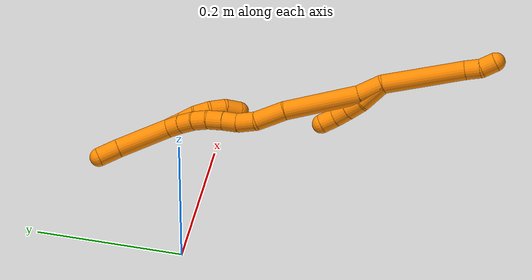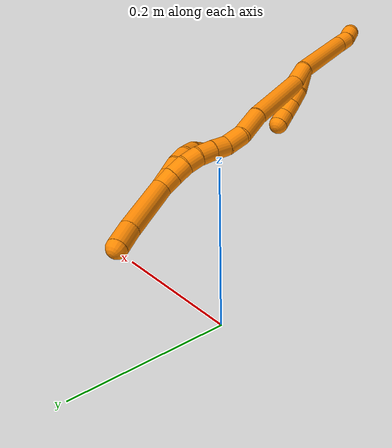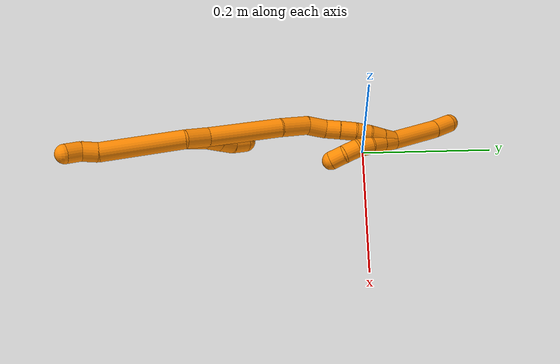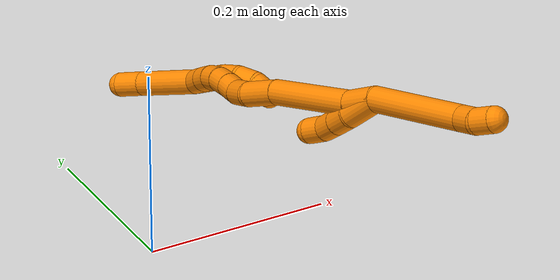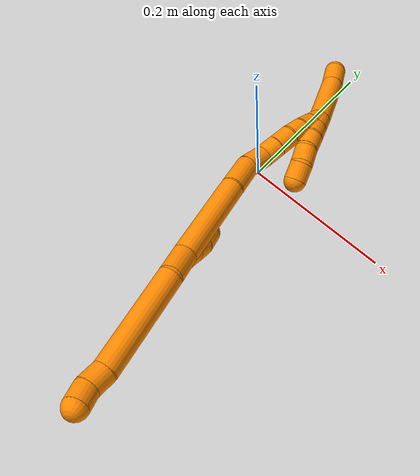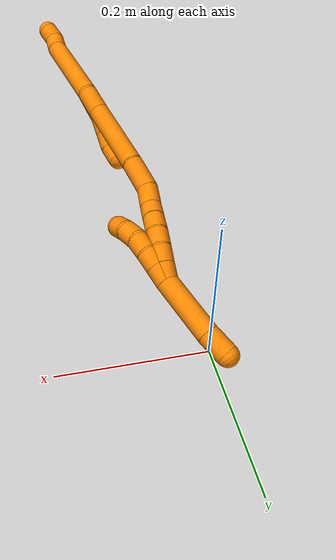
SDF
<sdf version="1.7">
 <world name="default">
  <model name="19">
   <static>0</static>
   <link name="19">
    <collision name="collision-cylinder-e_1_2_8">
     <pose>-0.006205 -0.013523 0.052353 0.252782 -0.114253 -0.014533</pose>
     <geometry><cylinder><radius>0.0125</radius><length>0.108852</length></cylinder></geometry>
     <surface>
      <friction><ode><mu>1.16</mu><mu2>1.16</mu2><slip1>0</slip1><slip2>0</slip2></ode></friction>
      <contact><ode><kp>1e+06</kp><kd>1</kd><max_vel>0</max_vel><min_depth>0.001</min_depth></ode></contact>
     </surface>
    </collision>
    <visual name="visual-cylinder-e_1_2_8">
     <pose>-0.006205 -0.013523 0.052353 0.252782 -0.114253 -0.014533</pose>
     <geometry><cylinder><radius>0.0125</radius><length>0.108852</length></cylinder></geometry>
     <material><ambient>0.996078 0.537255 0 1</ambient></material>
    </visual>
    <collision name="collision-cylinder-e_2_8_9">
     <pose>-0.015618 -0.028733 0.114504 0.170481 -0.312114 -0.026886</pose>
     <geometry><cylinder><radius>0.0125</radius><length>0.020895</length></cylinder></geometry>
     <surface>
      <friction><ode><mu>1.16</mu><mu2>1.16</mu2><slip1>0</slip1><slip2>0</slip2></ode></friction>
      <contact><ode><kp>1e+06</kp><kd>1</kd><max_vel>0</max_vel><min_depth>0.001</min_depth></ode></contact>
     </surface>
    </collision>
    <visual name="visual-cylinder-e_2_8_9">
     <pose>-0.015618 -0.028733 0.114504 0.170481 -0.312114 -0.026886</pose>
     <geometry><cylinder><radius>0.0125</radius><length>0.020895</length></cylinder></geometry>
     <material><ambient>0.996078 0.537255 0 1</ambient></material>
    </visual>
    <collision name="collision-cylinder-e_3_9_6">
     <pose>-0.018839 -0.030654 0.134427 0.023147 -0.001301 -1.5e-05</pose>
     <geometry><cylinder><radius>0.0125</radius><length>0.020253</length></cylinder></geometry>
     <surface>
      <friction><ode><mu>1.16</mu><mu2>1.16</mu2><slip1>0</slip1><slip2>0</slip2></ode></friction>
      <contact><ode><kp>1e+06</kp><kd>1</kd><max_vel>0</max_vel><min_depth>0.001</min_depth></ode></contact>
     </surface>
    </collision>
    <visual name="visual-cylinder-e_3_9_6">
     <pose>-0.018839 -0.030654 0.134427 0.023147 -0.001301 -1.5e-05</pose>
     <geometry><cylinder><radius>0.0125</radius><length>0.020253</length></cylinder></geometry>
     <material><ambient>0.996078 0.537255 0 1</ambient></material>
    </visual>
    <collision name="collision-cylinder-e_1_2_10">
     <pose>-0.000204 -0.00569 -0.017371 2.82507 -0.01117 -0.069963</pose>
     <geometry><cylinder><radius>0.0125</radius><length>0.036561</length></cylinder></geometry>
     <surface>
      <friction><ode><mu>1.16</mu><mu2>1.16</mu2><slip1>0</slip1><slip2>0</slip2></ode></friction>
      <contact><ode><kp>1e+06</kp><kd>1</kd><max_vel>0</max_vel><min_depth>0.001</min_depth></ode></contact>
     </surface>
    </collision>
    <visual name="visual-cylinder-e_1_2_10">
     <pose>-0.000204 -0.00569 -0.017371 2.82507 -0.01117 -0.069963</pose>
     <geometry><cylinder><radius>0.0125</radius><length>0.036561</length></cylinder></geometry>
     <material><ambient>0.996078 0.537255 0 1</ambient></material>
    </visual>
    <collision name="collision-cylinder-e_2_10_11">
     <pose>0.001639 -0.014098 -0.045318 2.89 0.185352 1.26756</pose>
     <geometry><cylinder><radius>0.0125</radius><length>0.022219</length></cylinder></geometry>
     <surface>
      <friction><ode><mu>1.16</mu><mu2>1.16</mu2><slip1>0</slip1><slip2>0</slip2></ode></friction>
      <contact><ode><kp>1e+06</kp><kd>1</kd><max_vel>0</max_vel><min_depth>0.001</min_depth></ode></contact>
     </surface>
    </collision>
    <visual name="visual-cylinder-e_2_10_11">
     <pose>0.001639 -0.014098 -0.045318 2.89 0.185352 1.26756</pose>
     <geometry><cylinder><radius>0.0125</radius><length>0.022219</length></cylinder></geometry>
     <material><ambient>0.996078 0.537255 0 1</ambient></material>
    </visual>
    <collision name="collision-cylinder-e_3_11_12">
     <pose>0.005754 -0.019059 -0.065783 2.91858 0.201134 1.46695</pose>
     <geometry><cylinder><radius>0.0125</radius><length>0.020699</length></cylinder></geometry>
     <surface>
      <friction><ode><mu>1.16</mu><mu2>1.16</mu2><slip1>0</slip1><slip2>0</slip2></ode></friction>
      <contact><ode><kp>1e+06</kp><kd>1</kd><max_vel>0</max_vel><min_depth>0.001</min_depth></ode></contact>
     </surface>
    </collision>
    <visual name="visual-cylinder-e_3_11_12">
     <pose>0.005754 -0.019059 -0.065783 2.91858 0.201134 1.46695</pose>
     <geometry><cylinder><radius>0.0125</radius><length>0.020699</length></cylinder></geometry>
     <material><ambient>0.996078 0.537255 0 1</ambient></material>
    </visual>
    <collision name="collision-cylinder-e_4_12_5">
     <pose>0.008197 -0.021552 -0.085924 3.11716 0.036607 1.96459</pose>
     <geometry><cylinder><radius>0.0125</radius><length>0.020521</length></cylinder></geometry>
     <surface>
      <friction><ode><mu>1.16</mu><mu2>1.16</mu2><slip1>0</slip1><slip2>0</slip2></ode></friction>
      <contact><ode><kp>1e+06</kp><kd>1</kd><max_vel>0</max_vel><min_depth>0.001</min_depth></ode></contact>
     </surface>
    </collision>
    <visual name="visual-cylinder-e_4_12_5">
     <pose>0.008197 -0.021552 -0.085924 3.11716 0.036607 1.96459</pose>
     <geometry><cylinder><radius>0.0125</radius><length>0.020521</length></cylinder></geometry>
     <material><ambient>0.996078 0.537255 0 1</ambient></material>
    </visual>
    <collision name="collision-cylinder-e_1_2_13">
     <pose>0.000804 -0.000262 -0.016472 3.1257 0.048745 2.51142</pose>
     <geometry><cylinder><radius>0.0125</radius><length>0.032988</length></cylinder></geometry>
     <surface>
      <friction><ode><mu>1.16</mu><mu2>1.16</mu2><slip1>0</slip1><slip2>0</slip2></ode></friction>
      <contact><ode><kp>1e+06</kp><kd>1</kd><max_vel>0</max_vel><min_depth>0.001</min_depth></ode></contact>
     </surface>
    </collision>
    <visual name="visual-cylinder-e_1_2_13">
     <pose>0.000804 -0.000262 -0.016472 3.1257 0.048745 2.51142</pose>
     <geometry><cylinder><radius>0.0125</radius><length>0.032988</length></cylinder></geometry>
     <material><ambient>0.996078 0.537255 0 1</ambient></material>
    </visual>
    <collision name="collision-cylinder-e_2_13_14">
     <pose>0.007225 0.009194 -0.081366 -2.94353 0.113252 -1.03696</pose>
     <geometry><cylinder><radius>0.0125</radius><length>0.099411</length></cylinder></geometry>
     <surface>
      <friction><ode><mu>1.16</mu><mu2>1.16</mu2><slip1>0</slip1><slip2>0</slip2></ode></friction>
      <contact><ode><kp>1e+06</kp><kd>1</kd><max_vel>0</max_vel><min_depth>0.001</min_depth></ode></contact>
     </surface>
    </collision>
    <visual name="visual-cylinder-e_2_13_14">
     <pose>0.007225 0.009194 -0.081366 -2.94353 0.113252 -1.03696</pose>
     <geometry><cylinder><radius>0.0125</radius><length>0.099411</length></cylinder></geometry>
     <material><ambient>0.996078 0.537255 0 1</ambient></material>
    </visual>
    <collision name="collision-cylinder-e_3_14_15">
     <pose>0.014588 0.019849 -0.149664 -3.09447 0.087535 -2.15431</pose>
     <geometry><cylinder><radius>0.0125</radius><length>0.03995</length></cylinder></geometry>
     <surface>
      <friction><ode><mu>1.16</mu><mu2>1.16</mu2><slip1>0</slip1><slip2>0</slip2></ode></friction>
      <contact><ode><kp>1e+06</kp><kd>1</kd><max_vel>0</max_vel><min_depth>0.001</min_depth></ode></contact>
     </surface>
    </collision>
    <visual name="visual-cylinder-e_3_14_15">
     <pose>0.014588 0.019849 -0.149664 -3.09447 0.087535 -2.15431</pose>
     <geometry><cylinder><radius>0.0125</radius><length>0.03995</length></cylinder></geometry>
     <material><ambient>0.996078 0.537255 0 1</ambient></material>
    </visual>
    <collision name="collision-cylinder-e_4_15_16">
     <pose>0.021583 0.02204 -0.181519 -3.03734 0.410956 -2.65102</pose>
     <geometry><cylinder><radius>0.0125</radius><length>0.026276</length></cylinder></geometry>
     <surface>
      <friction><ode><mu>1.16</mu><mu2>1.16</mu2><slip1>0</slip1><slip2>0</slip2></ode></friction>
      <contact><ode><kp>1e+06</kp><kd>1</kd><max_vel>0</max_vel><min_depth>0.001</min_depth></ode></contact>
     </surface>
    </collision>
    <visual name="visual-cylinder-e_4_15_16">
     <pose>0.021583 0.02204 -0.181519 -3.03734 0.410956 -2.65102</pose>
     <geometry><cylinder><radius>0.0125</radius><length>0.026276</length></cylinder></geometry>
     <material><ambient>0.996078 0.537255 0 1</ambient></material>
    </visual>
    <collision name="collision-cylinder-e_5_16_17">
     <pose>0.030903 0.02693 -0.201935 -2.73457 0.417156 -1.5961</pose>
     <geometry><cylinder><radius>0.0125</radius><length>0.020098</length></cylinder></geometry>
     <surface>
      <friction><ode><mu>1.16</mu><mu2>1.16</mu2><slip1>0</slip1><slip2>0</slip2></ode></friction>
      <contact><ode><kp>1e+06</kp><kd>1</kd><max_vel>0</max_vel><min_depth>0.001</min_depth></ode></contact>
     </surface>
    </collision>
    <visual name="visual-cylinder-e_5_16_17">
     <pose>0.030903 0.02693 -0.201935 -2.73457 0.417156 -1.5961</pose>
     <geometry><cylinder><radius>0.0125</radius><length>0.020098</length></cylinder></geometry>
     <material><ambient>0.996078 0.537255 0 1</ambient></material>
    </visual>
    <collision name="collision-cylinder-e_6_17_18">
     <pose>0.039163 0.033764 -0.219564 -2.80696 0.406441 -1.7684</pose>
     <geometry><cylinder><radius>0.0125</radius><length>0.021191</length></cylinder></geometry>
     <surface>
      <friction><ode><mu>1.16</mu><mu2>1.16</mu2><slip1>0</slip1><slip2>0</slip2></ode></friction>
      <contact><ode><kp>1e+06</kp><kd>1</kd><max_vel>0</max_vel><min_depth>0.001</min_depth></ode></contact>
     </surface>
    </collision>
    <visual name="visual-cylinder-e_6_17_18">
     <pose>0.039163 0.033764 -0.219564 -2.80696 0.406441 -1.7684</pose>
     <geometry><cylinder><radius>0.0125</radius><length>0.021191</length></cylinder></geometry>
     <material><ambient>0.996078 0.537255 0 1</ambient></material>
    </visual>
    <collision name="collision-cylinder-e_7_18_19">
     <pose>0.047346 0.038151 -0.237864 -3.01158 0.410157 -2.53498</pose>
     <geometry><cylinder><radius>0.0125</radius><length>0.02003</length></cylinder></geometry>
     <surface>
      <friction><ode><mu>1.16</mu><mu2>1.16</mu2><slip1>0</slip1><slip2>0</slip2></ode></friction>
      <contact><ode><kp>1e+06</kp><kd>1</kd><max_vel>0</max_vel><min_depth>0.001</min_depth></ode></contact>
     </surface>
    </collision>
    <visual name="visual-cylinder-e_7_18_19">
     <pose>0.047346 0.038151 -0.237864 -3.01158 0.410157 -2.53498</pose>
     <geometry><cylinder><radius>0.0125</radius><length>0.02003</length></cylinder></geometry>
     <material><ambient>0.996078 0.537255 0 1</ambient></material>
    </visual>
    <collision name="collision-cylinder-e_8_19_20">
     <pose>0.055127 0.038779 -0.256222 3.08088 0.387981 2.83488</pose>
     <geometry><cylinder><radius>0.0125</radius><length>0.020026</length></cylinder></geometry>
     <surface>
      <friction><ode><mu>1.16</mu><mu2>1.16</mu2><slip1>0</slip1><slip2>0</slip2></ode></friction>
      <contact><ode><kp>1e+06</kp><kd>1</kd><max_vel>0</max_vel><min_depth>0.001</min_depth></ode></contact>
     </surface>
    </collision>
    <visual name="visual-cylinder-e_8_19_20">
     <pose>0.055127 0.038779 -0.256222 3.08088 0.387981 2.83488</pose>
     <geometry><cylinder><radius>0.0125</radius><length>0.020026</length></cylinder></geometry>
     <material><ambient>0.996078 0.537255 0 1</ambient></material>
    </visual>
    <collision name="collision-cylinder-e_9_20_1">
     <pose>0.062384 0.037305 -0.274824 3.0444 0.353677 2.61017</pose>
     <geometry><cylinder><radius>0.0125</radius><length>0.02003</length></cylinder></geometry>
     <surface>
      <friction><ode><mu>1.16</mu><mu2>1.16</mu2><slip1>0</slip1><slip2>0</slip2></ode></friction>
      <contact><ode><kp>1e+06</kp><kd>1</kd><max_vel>0</max_vel><min_depth>0.001</min_depth></ode></contact>
     </surface>
    </collision>
    <visual name="visual-cylinder-e_9_20_1">
     <pose>0.062384 0.037305 -0.274824 3.0444 0.353677 2.61017</pose>
     <geometry><cylinder><radius>0.0125</radius><length>0.02003</length></cylinder></geometry>
     <material><ambient>0.996078 0.537255 0 1</ambient></material>
    </visual>
    <collision name="collision-cylinder-e_1_1_21">
     <pose>0.065926 0.036414 -0.274175 -0.002037 0.007359 -7e-06</pose>
     <geometry><cylinder><radius>0.0125</radius><length>0.02</length></cylinder></geometry>
     <surface>
      <friction><ode><mu>1.16</mu><mu2>1.16</mu2><slip1>0</slip1><slip2>0</slip2></ode></friction>
      <contact><ode><kp>1e+06</kp><kd>1</kd><max_vel>0</max_vel><min_depth>0.001</min_depth></ode></contact>
     </surface>
    </collision>
    <visual name="visual-cylinder-e_1_1_21">
     <pose>0.065926 0.036414 -0.274175 -0.002037 0.007359 -7e-06</pose>
     <geometry><cylinder><radius>0.0125</radius><length>0.02</length></cylinder></geometry>
     <material><ambient>0.996078 0.537255 0 1</ambient></material>
    </visual>
    <collision name="collision-cylinder-e_2_21_22">
     <pose>0.066163 0.036523 -0.254177 -0.008846 0.01635 -7.2e-05</pose>
     <geometry><cylinder><radius>0.0125</radius><length>0.02</length></cylinder></geometry>
     <surface>
      <friction><ode><mu>1.16</mu><mu2>1.16</mu2><slip1>0</slip1><slip2>0</slip2></ode></friction>
      <contact><ode><kp>1e+06</kp><kd>1</kd><max_vel>0</max_vel><min_depth>0.001</min_depth></ode></contact>
     </surface>
    </collision>
    <visual name="visual-cylinder-e_2_21_22">
     <pose>0.066163 0.036523 -0.254177 -0.008846 0.01635 -7.2e-05</pose>
     <geometry><cylinder><radius>0.0125</radius><length>0.02</length></cylinder></geometry>
     <material><ambient>0.996078 0.537255 0 1</ambient></material>
    </visual>
    <collision name="collision-cylinder-e_3_22_23">
     <pose>0.0663 0.034863 -0.234333 0.175744 -0.00272 -0.00024</pose>
     <geometry><cylinder><radius>0.0125</radius><length>0.02</length></cylinder></geometry>
     <surface>
      <friction><ode><mu>1.16</mu><mu2>1.16</mu2><slip1>0</slip1><slip2>0</slip2></ode></friction>
      <contact><ode><kp>1e+06</kp><kd>1</kd><max_vel>0</max_vel><min_depth>0.001</min_depth></ode></contact>
     </surface>
    </collision>
    <visual name="visual-cylinder-e_3_22_23">
     <pose>0.0663 0.034863 -0.234333 0.175744 -0.00272 -0.00024</pose>
     <geometry><cylinder><radius>0.0125</radius><length>0.02</length></cylinder></geometry>
     <material><ambient>0.996078 0.537255 0 1</ambient></material>
    </visual>
    <collision name="collision-cylinder-e_4_23_24">
     <pose>0.067285 0.028828 -0.215509 0.445429 0.101399 0.022983</pose>
     <geometry><cylinder><radius>0.0125</radius><length>0.02</length></cylinder></geometry>
     <surface>
      <friction><ode><mu>1.16</mu><mu2>1.16</mu2><slip1>0</slip1><slip2>0</slip2></ode></friction>
      <contact><ode><kp>1e+06</kp><kd>1</kd><max_vel>0</max_vel><min_depth>0.001</min_depth></ode></contact>
     </surface>
    </collision>
    <visual name="visual-cylinder-e_4_23_24">
     <pose>0.067285 0.028828 -0.215509 0.445429 0.101399 0.022983</pose>
     <geometry><cylinder><radius>0.0125</radius><length>0.02</length></cylinder></geometry>
     <material><ambient>0.996078 0.537255 0 1</ambient></material>
    </visual>
    <collision name="collision-cylinder-e_5_24_4">
     <pose>0.06859 0.017593 -0.199346 0.768657 0.029303 0.011852</pose>
     <geometry><cylinder><radius>0.0125</radius><length>0.02</length></cylinder></geometry>
     <surface>
      <friction><ode><mu>1.16</mu><mu2>1.16</mu2><slip1>0</slip1><slip2>0</slip2></ode></friction>
      <contact><ode><kp>1e+06</kp><kd>1</kd><max_vel>0</max_vel><min_depth>0.001</min_depth></ode></contact>
     </surface>
    </collision>
    <visual name="visual-cylinder-e_5_24_4">
     <pose>0.06859 0.017593 -0.199346 0.768657 0.029303 0.011852</pose>
     <geometry><cylinder><radius>0.0125</radius><length>0.02</length></cylinder></geometry>
     <material><ambient>0.996078 0.537255 0 1</ambient></material>
    </visual>
    <collision name="collision-cylinder-e_1_1_25">
     <pose>0.064328 0.039969 -0.319701 -3.04128 -0.042673 0.803968</pose>
     <geometry><cylinder><radius>0.0125</radius><length>0.071476</length></cylinder></geometry>
     <surface>
      <friction><ode><mu>1.16</mu><mu2>1.16</mu2><slip1>0</slip1><slip2>0</slip2></ode></friction>
      <contact><ode><kp>1e+06</kp><kd>1</kd><max_vel>0</max_vel><min_depth>0.001</min_depth></ode></contact>
     </surface>
    </collision>
    <visual name="visual-cylinder-e_1_1_25">
     <pose>0.064328 0.039969 -0.319701 -3.04128 -0.042673 0.803968</pose>
     <geometry><cylinder><radius>0.0125</radius><length>0.071476</length></cylinder></geometry>
     <material><ambient>0.996078 0.537255 0 1</ambient></material>
    </visual>
    <collision name="collision-cylinder-e_2_25_3">
     <pose>0.060953 0.045079 -0.369285 -3.03284 -0.130129 1.74973</pose>
     <geometry><cylinder><radius>0.0125</radius><length>0.028524</length></cylinder></geometry>
     <surface>
      <friction><ode><mu>1.16</mu><mu2>1.16</mu2><slip1>0</slip1><slip2>0</slip2></ode></friction>
      <contact><ode><kp>1e+06</kp><kd>1</kd><max_vel>0</max_vel><min_depth>0.001</min_depth></ode></contact>
     </surface>
    </collision>
    <visual name="visual-cylinder-e_2_25_3">
     <pose>0.060953 0.045079 -0.369285 -3.03284 -0.130129 1.74973</pose>
     <geometry><cylinder><radius>0.0125</radius><length>0.028524</length></cylinder></geometry>
     <material><ambient>0.996078 0.537255 0 1</ambient></material>
    </visual>
    <collision name="collision-sphere-3">
     <pose>0.059102 0.046614 -0.383343 0 -0 0</pose>
     <geometry><sphere><radius>0.0125</radius></sphere></geometry>
     <surface>
      <friction><ode><mu>1.16</mu><mu2>1.16</mu2><slip1>0</slip1><slip2>0</slip2></ode></friction>
      <contact><ode><kp>1e+06</kp><kd>1</kd><max_vel>0</max_vel><min_depth>0.001</min_depth></ode></contact>
     </surface>
    </collision>
    <visual name="visual-sphere-3">
     <pose>0.059102 0.046614 -0.383343 0 -0 0</pose>
     <geometry><sphere><radius>0.0125</radius></sphere></geometry>
     <material><ambient>0.996078 0.537255 0 1</ambient></material>
    </visual>
    <collision name="collision-sphere-25">
     <pose>0.062803 0.043545 -0.355227 0 -0 0</pose>
     <geometry><sphere><radius>0.0125</radius></sphere></geometry>
     <surface>
      <friction><ode><mu>1.16</mu><mu2>1.16</mu2><slip1>0</slip1><slip2>0</slip2></ode></friction>
      <contact><ode><kp>1e+06</kp><kd>1</kd><max_vel>0</max_vel><min_depth>0.001</min_depth></ode></contact>
     </surface>
    </collision>
    <visual name="visual-sphere-25">
     <pose>0.062803 0.043545 -0.355227 0 -0 0</pose>
     <geometry><sphere><radius>0.0125</radius></sphere></geometry>
     <material><ambient>0.996078 0.537255 0 1</ambient></material>
    </visual>
    <collision name="collision-sphere-4">
     <pose>0.068883 0.010644 -0.192161 0 -0 0</pose>
     <geometry><sphere><radius>0.0125</radius></sphere></geometry>
     <surface>
      <friction><ode><mu>1.16</mu><mu2>1.16</mu2><slip1>0</slip1><slip2>0</slip2></ode></friction>
      <contact><ode><kp>1e+06</kp><kd>1</kd><max_vel>0</max_vel><min_depth>0.001</min_depth></ode></contact>
     </surface>
    </collision>
    <visual name="visual-sphere-4">
     <pose>0.068883 0.010644 -0.192161 0 -0 0</pose>
     <geometry><sphere><radius>0.0125</radius></sphere></geometry>
     <material><ambient>0.996078 0.537255 0 1</ambient></material>
    </visual>
    <collision name="collision-sphere-24">
     <pose>0.068297 0.024542 -0.206531 0 -0 0</pose>
     <geometry><sphere><radius>0.0125</radius></sphere></geometry>
     <surface>
      <friction><ode><mu>1.16</mu><mu2>1.16</mu2><slip1>0</slip1><slip2>0</slip2></ode></friction>
      <contact><ode><kp>1e+06</kp><kd>1</kd><max_vel>0</max_vel><min_depth>0.001</min_depth></ode></contact>
     </surface>
    </collision>
    <visual name="visual-sphere-24">
     <pose>0.068297 0.024542 -0.206531 0 -0 0</pose>
     <geometry><sphere><radius>0.0125</radius></sphere></geometry>
     <material><ambient>0.996078 0.537255 0 1</ambient></material>
    </visual>
    <collision name="collision-sphere-23">
     <pose>0.066272 0.033114 -0.224487 0 -0 0</pose>
     <geometry><sphere><radius>0.0125</radius></sphere></geometry>
     <surface>
      <friction><ode><mu>1.16</mu><mu2>1.16</mu2><slip1>0</slip1><slip2>0</slip2></ode></friction>
      <contact><ode><kp>1e+06</kp><kd>1</kd><max_vel>0</max_vel><min_depth>0.001</min_depth></ode></contact>
     </surface>
    </collision>
    <visual name="visual-sphere-23">
     <pose>0.066272 0.033114 -0.224487 0 -0 0</pose>
     <geometry><sphere><radius>0.0125</radius></sphere></geometry>
     <material><ambient>0.996078 0.537255 0 1</ambient></material>
    </visual>
    <collision name="collision-sphere-22">
     <pose>0.066327 0.036611 -0.244179 0 -0 0</pose>
     <geometry><sphere><radius>0.0125</radius></sphere></geometry>
     <surface>
      <friction><ode><mu>1.16</mu><mu2>1.16</mu2><slip1>0</slip1><slip2>0</slip2></ode></friction>
      <contact><ode><kp>1e+06</kp><kd>1</kd><max_vel>0</max_vel><min_depth>0.001</min_depth></ode></contact>
     </surface>
    </collision>
    <visual name="visual-sphere-22">
     <pose>0.066327 0.036611 -0.244179 0 -0 0</pose>
     <geometry><sphere><radius>0.0125</radius></sphere></geometry>
     <material><ambient>0.996078 0.537255 0 1</ambient></material>
    </visual>
    <collision name="collision-sphere-21">
     <pose>0.066 0.036434 -0.264176 0 -0 0</pose>
     <geometry><sphere><radius>0.0125</radius></sphere></geometry>
     <surface>
      <friction><ode><mu>1.16</mu><mu2>1.16</mu2><slip1>0</slip1><slip2>0</slip2></ode></friction>
      <contact><ode><kp>1e+06</kp><kd>1</kd><max_vel>0</max_vel><min_depth>0.001</min_depth></ode></contact>
     </surface>
    </collision>
    <visual name="visual-sphere-21">
     <pose>0.066 0.036434 -0.264176 0 -0 0</pose>
     <geometry><sphere><radius>0.0125</radius></sphere></geometry>
     <material><ambient>0.996078 0.537255 0 1</ambient></material>
    </visual>
    <collision name="collision-sphere-1">
     <pose>0.065853 0.036393 -0.284175 0 -0 0</pose>
     <geometry><sphere><radius>0.0125</radius></sphere></geometry>
     <surface>
      <friction><ode><mu>1.16</mu><mu2>1.16</mu2><slip1>0</slip1><slip2>0</slip2></ode></friction>
      <contact><ode><kp>1e+06</kp><kd>1</kd><max_vel>0</max_vel><min_depth>0.001</min_depth></ode></contact>
     </surface>
    </collision>
    <visual name="visual-sphere-1">
     <pose>0.065853 0.036393 -0.284175 0 -0 0</pose>
     <geometry><sphere><radius>0.0125</radius></sphere></geometry>
     <material><ambient>0.996078 0.537255 0 1</ambient></material>
    </visual>
    <collision name="collision-sphere-11">
     <pose>0.003686 -0.016816 -0.055894 0 -0 0</pose>
     <geometry><sphere><radius>0.0125</radius></sphere></geometry>
     <surface>
      <friction><ode><mu>1.16</mu><mu2>1.16</mu2><slip1>0</slip1><slip2>0</slip2></ode></friction>
      <contact><ode><kp>1e+06</kp><kd>1</kd><max_vel>0</max_vel><min_depth>0.001</min_depth></ode></contact>
     </surface>
    </collision>
    <visual name="visual-sphere-11">
     <pose>0.003686 -0.016816 -0.055894 0 -0 0</pose>
     <geometry><sphere><radius>0.0125</radius></sphere></geometry>
     <material><ambient>0.996078 0.537255 0 1</ambient></material>
    </visual>
    <collision name="collision-sphere-10">
     <pose>-0.000408 -0.011379 -0.034743 0 -0 0</pose>
     <geometry><sphere><radius>0.0125</radius></sphere></geometry>
     <surface>
      <friction><ode><mu>1.16</mu><mu2>1.16</mu2><slip1>0</slip1><slip2>0</slip2></ode></friction>
      <contact><ode><kp>1e+06</kp><kd>1</kd><max_vel>0</max_vel><min_depth>0.001</min_depth></ode></contact>
     </surface>
    </collision>
    <visual name="visual-sphere-10">
     <pose>-0.000408 -0.011379 -0.034743 0 -0 0</pose>
     <geometry><sphere><radius>0.0125</radius></sphere></geometry>
     <material><ambient>0.996078 0.537255 0 1</ambient></material>
    </visual>
    <collision name="collision-sphere-6">
     <pose>-0.018852 -0.030889 0.14455 0 -0 0</pose>
     <geometry><sphere><radius>0.0125</radius></sphere></geometry>
     <surface>
      <friction><ode><mu>1.16</mu><mu2>1.16</mu2><slip1>0</slip1><slip2>0</slip2></ode></friction>
      <contact><ode><kp>1e+06</kp><kd>1</kd><max_vel>0</max_vel><min_depth>0.001</min_depth></ode></contact>
     </surface>
    </collision>
    <visual name="visual-sphere-6">
     <pose>-0.018852 -0.030889 0.14455 0 -0 0</pose>
     <geometry><sphere><radius>0.0125</radius></sphere></geometry>
     <material><ambient>0.996078 0.537255 0 1</ambient></material>
    </visual>
    <collision name="collision-sphere-9">
     <pose>-0.018826 -0.03042 0.124303 0 -0 0</pose>
     <geometry><sphere><radius>0.0125</radius></sphere></geometry>
     <surface>
      <friction><ode><mu>1.16</mu><mu2>1.16</mu2><slip1>0</slip1><slip2>0</slip2></ode></friction>
      <contact><ode><kp>1e+06</kp><kd>1</kd><max_vel>0</max_vel><min_depth>0.001</min_depth></ode></contact>
     </surface>
    </collision>
    <visual name="visual-sphere-9">
     <pose>-0.018826 -0.03042 0.124303 0 -0 0</pose>
     <geometry><sphere><radius>0.0125</radius></sphere></geometry>
     <material><ambient>0.996078 0.537255 0 1</ambient></material>
    </visual>
    <collision name="collision-sphere-2">
     <geometry><sphere><radius>0.0125</radius></sphere></geometry>
     <surface>
      <friction><ode><mu>1.16</mu><mu2>1.16</mu2><slip1>0</slip1><slip2>0</slip2></ode></friction>
      <contact><ode><kp>1e+06</kp><kd>1</kd><max_vel>0</max_vel><min_depth>0.001</min_depth></ode></contact>
     </surface>
    </collision>
    <visual name="visual-sphere-2">
     <geometry><sphere><radius>0.0125</radius></sphere></geometry>
     <material><ambient>0.996078 0.537255 0 1</ambient></material>
    </visual>
    <collision name="collision-sphere-19">
     <pose>0.051339 0.039342 -0.24697 0 -0 0</pose>
     <geometry><sphere><radius>0.0125</radius></sphere></geometry>
     <surface>
      <friction><ode><mu>1.16</mu><mu2>1.16</mu2><slip1>0</slip1><slip2>0</slip2></ode></friction>
      <contact><ode><kp>1e+06</kp><kd>1</kd><max_vel>0</max_vel><min_depth>0.001</min_depth></ode></contact>
     </surface>
    </collision>
    <visual name="visual-sphere-19">
     <pose>0.051339 0.039342 -0.24697 0 -0 0</pose>
     <geometry><sphere><radius>0.0125</radius></sphere></geometry>
     <material><ambient>0.996078 0.537255 0 1</ambient></material>
    </visual>
    <collision name="collision-sphere-8">
     <pose>-0.01241 -0.027046 0.104706 0 -0 0</pose>
     <geometry><sphere><radius>0.0125</radius></sphere></geometry>
     <surface>
      <friction><ode><mu>1.16</mu><mu2>1.16</mu2><slip1>0</slip1><slip2>0</slip2></ode></friction>
      <contact><ode><kp>1e+06</kp><kd>1</kd><max_vel>0</max_vel><min_depth>0.001</min_depth></ode></contact>
     </surface>
    </collision>
    <visual name="visual-sphere-8">
     <pose>-0.01241 -0.027046 0.104706 0 -0 0</pose>
     <geometry><sphere><radius>0.0125</radius></sphere></geometry>
     <material><ambient>0.996078 0.537255 0 1</ambient></material>
    </visual>
    <collision name="collision-sphere-12">
     <pose>0.007822 -0.021302 -0.075673 0 -0 0</pose>
     <geometry><sphere><radius>0.0125</radius></sphere></geometry>
     <surface>
      <friction><ode><mu>1.16</mu><mu2>1.16</mu2><slip1>0</slip1><slip2>0</slip2></ode></friction>
      <contact><ode><kp>1e+06</kp><kd>1</kd><max_vel>0</max_vel><min_depth>0.001</min_depth></ode></contact>
     </surface>
    </collision>
    <visual name="visual-sphere-12">
     <pose>0.007822 -0.021302 -0.075673 0 -0 0</pose>
     <geometry><sphere><radius>0.0125</radius></sphere></geometry>
     <material><ambient>0.996078 0.537255 0 1</ambient></material>
    </visual>
    <collision name="collision-sphere-5">
     <pose>0.008573 -0.021803 -0.096174 0 -0 0</pose>
     <geometry><sphere><radius>0.0125</radius></sphere></geometry>
     <surface>
      <friction><ode><mu>1.16</mu><mu2>1.16</mu2><slip1>0</slip1><slip2>0</slip2></ode></friction>
      <contact><ode><kp>1e+06</kp><kd>1</kd><max_vel>0</max_vel><min_depth>0.001</min_depth></ode></contact>
     </surface>
    </collision>
    <visual name="visual-sphere-5">
     <pose>0.008573 -0.021803 -0.096174 0 -0 0</pose>
     <geometry><sphere><radius>0.0125</radius></sphere></geometry>
     <material><ambient>0.996078 0.537255 0 1</ambient></material>
    </visual>
    <collision name="collision-sphere-13">
     <pose>0.001607 -0.000524 -0.032945 0 -0 0</pose>
     <geometry><sphere><radius>0.0125</radius></sphere></geometry>
     <surface>
      <friction><ode><mu>1.16</mu><mu2>1.16</mu2><slip1>0</slip1><slip2>0</slip2></ode></friction>
      <contact><ode><kp>1e+06</kp><kd>1</kd><max_vel>0</max_vel><min_depth>0.001</min_depth></ode></contact>
     </surface>
    </collision>
    <visual name="visual-sphere-13">
     <pose>0.001607 -0.000524 -0.032945 0 -0 0</pose>
     <geometry><sphere><radius>0.0125</radius></sphere></geometry>
     <material><ambient>0.996078 0.537255 0 1</ambient></material>
    </visual>
    <collision name="collision-sphere-14">
     <pose>0.012842 0.018912 -0.129788 0 -0 0</pose>
     <geometry><sphere><radius>0.0125</radius></sphere></geometry>
     <surface>
      <friction><ode><mu>1.16</mu><mu2>1.16</mu2><slip1>0</slip1><slip2>0</slip2></ode></friction>
      <contact><ode><kp>1e+06</kp><kd>1</kd><max_vel>0</max_vel><min_depth>0.001</min_depth></ode></contact>
     </surface>
    </collision>
    <visual name="visual-sphere-14">
     <pose>0.012842 0.018912 -0.129788 0 -0 0</pose>
     <geometry><sphere><radius>0.0125</radius></sphere></geometry>
     <material><ambient>0.996078 0.537255 0 1</ambient></material>
    </visual>
    <collision name="collision-sphere-15">
     <pose>0.016334 0.020787 -0.16954 0 -0 0</pose>
     <geometry><sphere><radius>0.0125</radius></sphere></geometry>
     <surface>
      <friction><ode><mu>1.16</mu><mu2>1.16</mu2><slip1>0</slip1><slip2>0</slip2></ode></friction>
      <contact><ode><kp>1e+06</kp><kd>1</kd><max_vel>0</max_vel><min_depth>0.001</min_depth></ode></contact>
     </surface>
    </collision>
    <visual name="visual-sphere-15">
     <pose>0.016334 0.020787 -0.16954 0 -0 0</pose>
     <geometry><sphere><radius>0.0125</radius></sphere></geometry>
     <material><ambient>0.996078 0.537255 0 1</ambient></material>
    </visual>
    <collision name="collision-sphere-16">
     <pose>0.026831 0.023293 -0.193498 0 -0 0</pose>
     <geometry><sphere><radius>0.0125</radius></sphere></geometry>
     <surface>
      <friction><ode><mu>1.16</mu><mu2>1.16</mu2><slip1>0</slip1><slip2>0</slip2></ode></friction>
      <contact><ode><kp>1e+06</kp><kd>1</kd><max_vel>0</max_vel><min_depth>0.001</min_depth></ode></contact>
     </surface>
    </collision>
    <visual name="visual-sphere-16">
     <pose>0.026831 0.023293 -0.193498 0 -0 0</pose>
     <geometry><sphere><radius>0.0125</radius></sphere></geometry>
     <material><ambient>0.996078 0.537255 0 1</ambient></material>
    </visual>
    <collision name="collision-sphere-17">
     <pose>0.034974 0.030567 -0.210372 0 -0 0</pose>
     <geometry><sphere><radius>0.0125</radius></sphere></geometry>
     <surface>
      <friction><ode><mu>1.16</mu><mu2>1.16</mu2><slip1>0</slip1><slip2>0</slip2></ode></friction>
      <contact><ode><kp>1e+06</kp><kd>1</kd><max_vel>0</max_vel><min_depth>0.001</min_depth></ode></contact>
     </surface>
    </collision>
    <visual name="visual-sphere-17">
     <pose>0.034974 0.030567 -0.210372 0 -0 0</pose>
     <geometry><sphere><radius>0.0125</radius></sphere></geometry>
     <material><ambient>0.996078 0.537255 0 1</ambient></material>
    </visual>
    <collision name="collision-sphere-18">
     <pose>0.043352 0.03696 -0.228757 0 -0 0</pose>
     <geometry><sphere><radius>0.0125</radius></sphere></geometry>
     <surface>
      <friction><ode><mu>1.16</mu><mu2>1.16</mu2><slip1>0</slip1><slip2>0</slip2></ode></friction>
      <contact><ode><kp>1e+06</kp><kd>1</kd><max_vel>0</max_vel><min_depth>0.001</min_depth></ode></contact>
     </surface>
    </collision>
    <visual name="visual-sphere-18">
     <pose>0.043352 0.03696 -0.228757 0 -0 0</pose>
     <geometry><sphere><radius>0.0125</radius></sphere></geometry>
     <material><ambient>0.996078 0.537255 0 1</ambient></material>
    </visual>
    <collision name="collision-sphere-20">
     <pose>0.058915 0.038217 -0.265474 0 -0 0</pose>
     <geometry><sphere><radius>0.0125</radius></sphere></geometry>
     <surface>
      <friction><ode><mu>1.16</mu><mu2>1.16</mu2><slip1>0</slip1><slip2>0</slip2></ode></friction>
      <contact><ode><kp>1e+06</kp><kd>1</kd><max_vel>0</max_vel><min_depth>0.001</min_depth></ode></contact>
     </surface>
    </collision>
    <visual name="visual-sphere-20">
     <pose>0.058915 0.038217 -0.265474 0 -0 0</pose>
     <geometry><sphere><radius>0.0125</radius></sphere></geometry>
     <material><ambient>0.996078 0.537255 0 1</ambient></material>
    </visual>
    <inertial>
     <pose>0.024803 0.011997 -0.125841 0 -0 0</pose>
     <mass>0.75</mass>
     <inertia><ixx>0.000133</ixx><ixy>0</ixy><ixz>0</ixz><iyy>1e-05</iyy><iyz>0</iyz><izz>-9e-06</izz></inertia>
    </inertial>
   </link>
   <pose>0.110744 -0.244104 0.258343 1.14058 0.149256 0.34146</pose>
  </model>
 </world>
</sdf>
